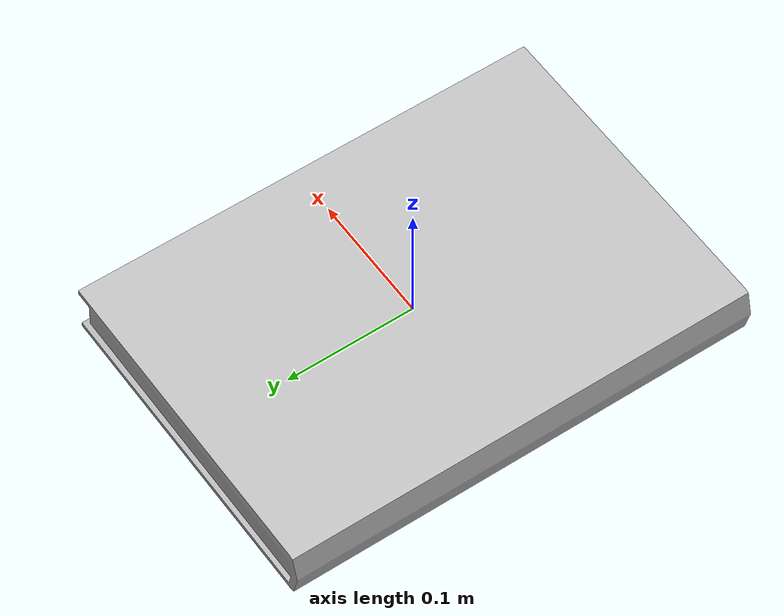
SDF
<?xml version='1.0'?>
<sdf version="1.4">
	<model name="book2">
		<static>1</static>
		<link name="link">
			<visual name="mesh">
				<geometry>
					<mesh>
						<uri>model://meshes/book2.dae</uri>
					</mesh>
				</geometry>
			</visual>
			<collision name="collider">
				<pose>0 0 0 0 0 0</pose>
				<geometry>
					<box>
						<size>0.257 0.36 0.04</size>
					</box>
				</geometry>
			</collision>
		</link>
	</model>
</sdf>
